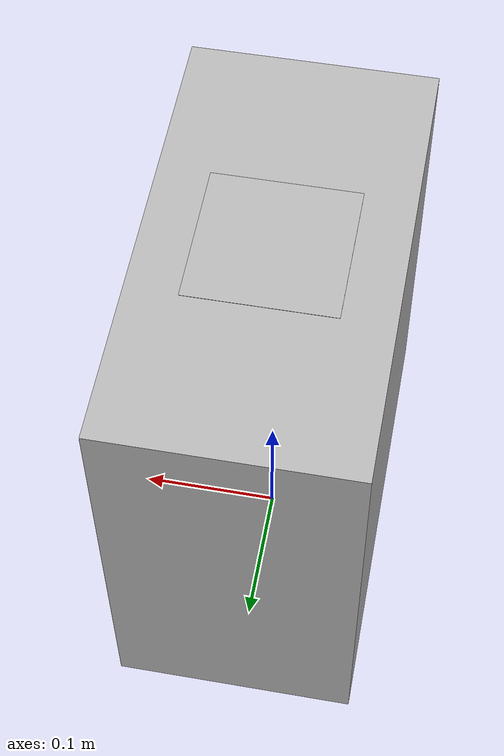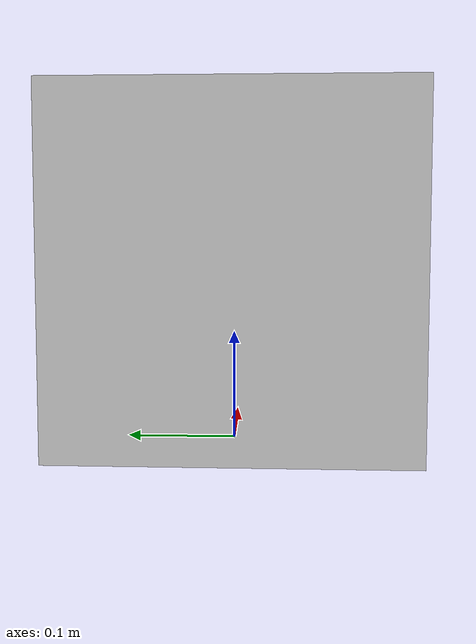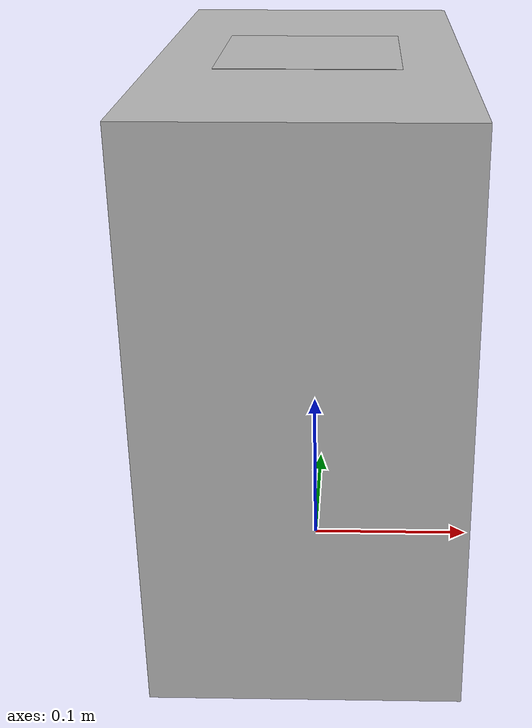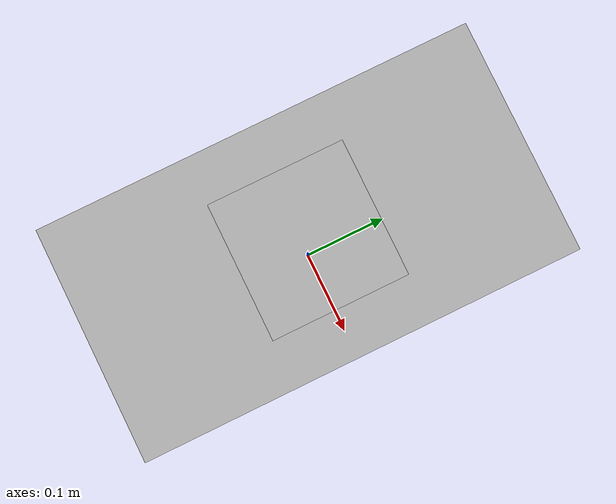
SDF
<?xml version="1.0" ?>
<!-- |    This document was autogenerated by xacro from /home/alaurenzi/code/core_ws/ros_src/eurobin_grasp_box/models/aruco_box/model.sdf.xacro | -->
<!-- |    EDITING THIS FILE BY HAND IS NOT RECOMMENDED                                 | -->
<sdf version="1.6">
  <model name="aruco_box">
    <link name="box">
      <pose>0 0 0.16 0 0 0</pose>
      <inertial>
        <mass>0.5</mass>
        <inertia>
          <ixx>0.008533333333333334</ixx>
          <ixy>0.0</ixy>
          <ixz>0.0</ixz>
          <iyy>0.005470833333333333</iyy>
          <iyz>0.0</iyz>
          <izz>0.005470833333333333</izz>
        </inertia>
      </inertial>
      <visual name="box_visual">
        <pose>0 0 0 0 0 0</pose>
        <geometry>
          <box>
            <size>0.17 0.32 0.32</size>
          </box>
        </geometry>
      </visual>
      <collision name="box_collision">
        <pose>0 0 0 0 0 0</pose>
        <geometry>
          <box>
            <size>0.17 0.32 0.32</size>
          </box>
        </geometry>
        <surface>
          <friction>
            <ode>
              <mu>1.0</mu>
              <mu2>1.0</mu2>
            </ode>
          </friction>
          <contact>
            <ode>
              <kp>50000.0</kp>
              <kd>1.0</kd>
            </ode>
          </contact>
        </surface>
      </collision>
    </link>
    <link name="marker">
      <pose>0.0 0.0 0.321 0 -1.57 0</pose>
      <inertial>
        <pose>0 0 0 0 0 0</pose>
        <mass>0.001</mass>
        <inertia>
          <ixx>3.7499999999999997e-06</ixx>
          <ixy>0.0</ixy>
          <ixz>0.0</ixz>
          <iyy>1.8750008333333333e-06</iyy>
          <iyz>0.0</iyz>
          <izz>1.8750008333333333e-06</izz>
        </inertia>
      </inertial>
      <visual name="front_visual">
        <pose>0.00005 0 0 0 0 0</pose>
        <geometry>
          <box>
            <size>0.0001 0.10 0.10</size>
          </box>
        </geometry>
        <material>
          <script>
            <uri>model://aruco_box/materials/scripts</uri>
            <uri>model://aruco_box/materials/textures</uri>
            <name>Marker1</name>
          </script>
        </material>
      </visual>
      <!-- Hide the marker from the back -->
      <visual name="rear_visual">
        <pose>-0.00005 0 0 0 0 0</pose>
        <geometry>
          <box>
            <size>0.0001 0.10 0.10</size>
          </box>
        </geometry>
      </visual>
      <collision name="collision">
        <pose>0 0 0 0 0 0</pose>
        <geometry>
          <box>
            <size>0.0001 0.10 0.10</size>
          </box>
        </geometry>
      </collision>
    </link>
    <joint name="box_to_marker" type="fixed">
      <parent>box</parent>
      <child>marker</child>
    </joint>
  </model>
</sdf>
